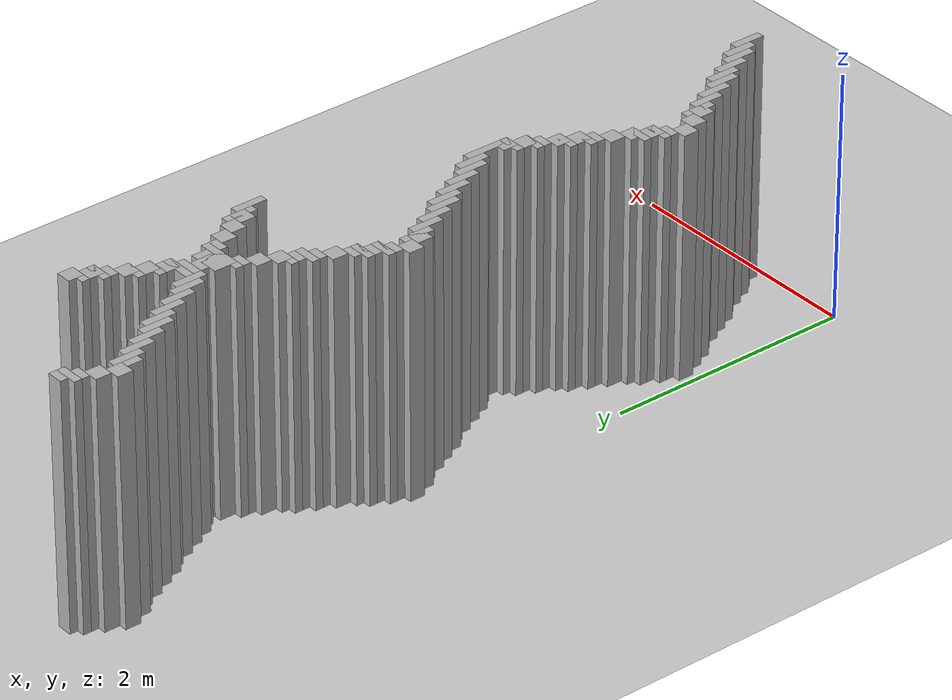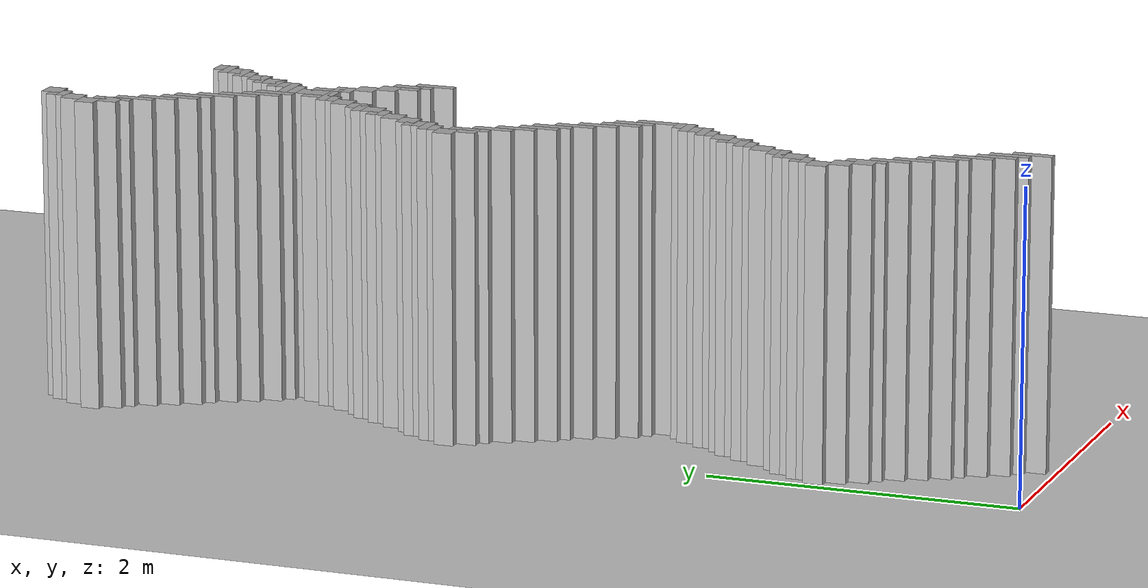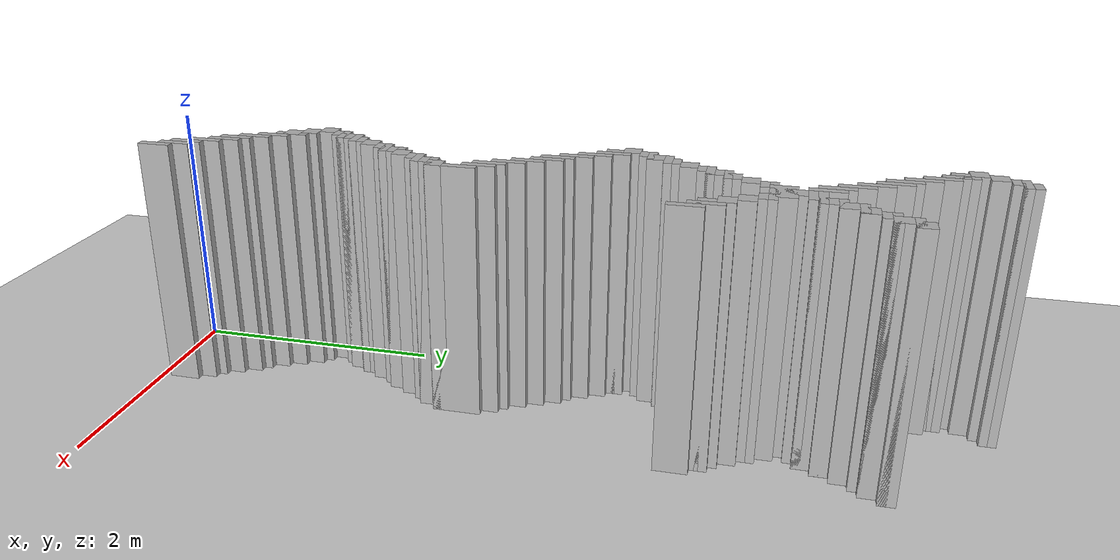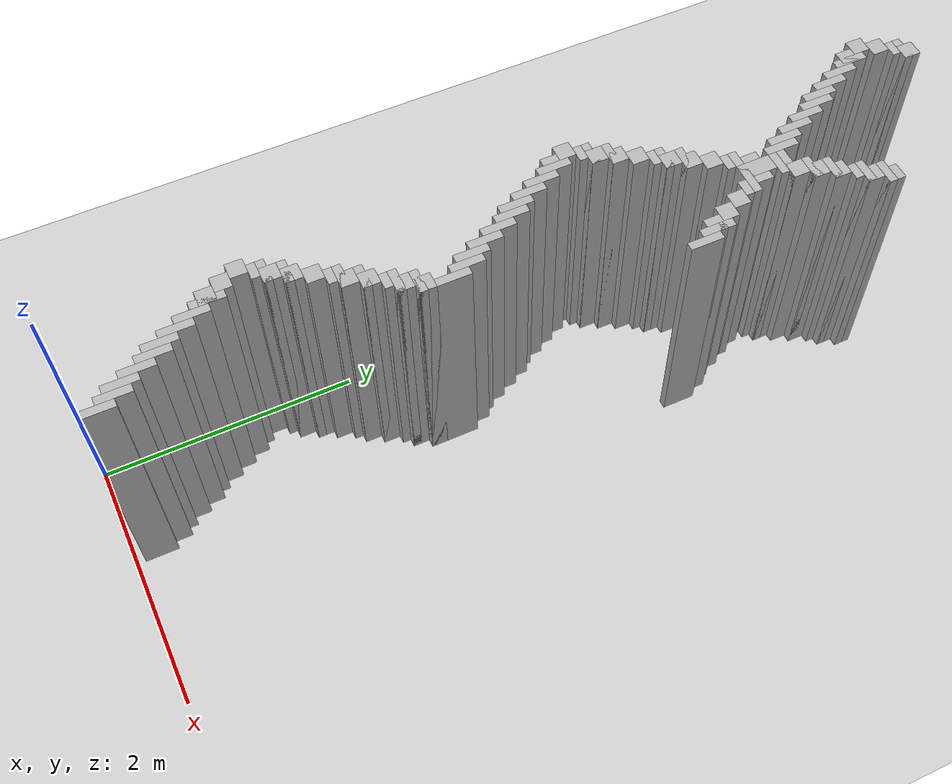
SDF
<sdf version="1.6">
 <world name="slam_world">
  <model name="ground_plane">
   <static>true</static>
   <link name="link">
    <collision name="collision">
     <geometry><plane><normal>0 0 1</normal><size>100 100</size></plane></geometry>
    </collision>
    <visual name="visual">
     <geometry><plane><normal>0 0 1</normal><size>100 100</size></plane></geometry>
     <material>
      <ambient>0.8 0.8 0.8 1</ambient>
      <diffuse>0.8 0.8 0.8 1</diffuse>
      <specular>0.8 0.8 0.8 1</specular>
     </material>
    </visual>
   </link>
  </model>
  <model name="wall_1664">
   <static>true</static>
   <pose>0.3191489361702127 6.51063829787234 1.0 0 0 0</pose>
   <link name="link">
    <collision name="collision">
     <geometry><box><size>0.1276595744680851 0.1276595744680851 2.0</size></box></geometry>
    </collision>
    <visual name="visual">
     <geometry><box><size>0.1276595744680851 0.1276595744680851 2.0</size></box></geometry>
     <material><ambient>0.5 0.5 0.5 1</ambient><diffuse>0.7 0.7 0.7 1</diffuse></material>
    </visual>
   </link>
  </model>
  <model name="wall_1671">
   <static>true</static>
   <pose>0.28723404255319146 6.478723404255319 1.0 0 0 0</pose>
   <link name="link">
    <collision name="collision">
     <geometry><box><size>0.19148936170212766 0.06382978723404255 2.0</size></box></geometry>
    </collision>
    <visual name="visual">
     <geometry><box><size>0.19148936170212766 0.06382978723404255 2.0</size></box></geometry>
     <material><ambient>0.5 0.5 0.5 1</ambient><diffuse>0.7 0.7 0.7 1</diffuse></material>
    </visual>
   </link>
  </model>
  <model name="wall_1680">
   <static>true</static>
   <pose>0.2553191489361702 6.414893617021276 1.0 0 0 0</pose>
   <link name="link">
    <collision name="collision">
     <geometry><box><size>0.1276595744680851 0.06382978723404255 2.0</size></box></geometry>
    </collision>
    <visual name="visual">
     <geometry><box><size>0.1276595744680851 0.06382978723404255 2.0</size></box></geometry>
     <material><ambient>0.5 0.5 0.5 1</ambient><diffuse>0.7 0.7 0.7 1</diffuse></material>
    </visual>
   </link>
  </model>
  <model name="wall_1687">
   <static>true</static>
   <pose>0.19148936170212766 6.319148936170213 1.0 0 0 0</pose>
   <link name="link">
    <collision name="collision">
     <geometry><box><size>0.1276595744680851 0.1276595744680851 2.0</size></box></geometry>
    </collision>
    <visual name="visual">
     <geometry><box><size>0.1276595744680851 0.1276595744680851 2.0</size></box></geometry>
     <material><ambient>0.5 0.5 0.5 1</ambient><diffuse>0.7 0.7 0.7 1</diffuse></material>
    </visual>
   </link>
  </model>
  <model name="wall_1694">
   <static>true</static>
   <pose>0.1276595744680851 6.191489361702128 1.0 0 0 0</pose>
   <link name="link">
    <collision name="collision">
     <geometry><box><size>0.1276595744680851 0.1276595744680851 2.0</size></box></geometry>
    </collision>
    <visual name="visual">
     <geometry><box><size>0.1276595744680851 0.1276595744680851 2.0</size></box></geometry>
     <material><ambient>0.5 0.5 0.5 1</ambient><diffuse>0.7 0.7 0.7 1</diffuse></material>
    </visual>
   </link>
  </model>
  <model name="wall_1703">
   <static>true</static>
   <pose>0.22340425531914893 6.063829787234042 1.0 0 0 0</pose>
   <link name="link">
    <collision name="collision">
     <geometry><box><size>0.06382978723404255 0.2553191489361702 2.0</size></box></geometry>
    </collision>
    <visual name="visual">
     <geometry><box><size>0.06382978723404255 0.2553191489361702 2.0</size></box></geometry>
     <material><ambient>0.5 0.5 0.5 1</ambient><diffuse>0.7 0.7 0.7 1</diffuse></material>
    </visual>
   </link>
  </model>
  <model name="wall_1710">
   <static>true</static>
   <pose>0.19148936170212766 6.063829787234042 1.0 0 0 0</pose>
   <link name="link">
    <collision name="collision">
     <geometry><box><size>0.1276595744680851 0.1276595744680851 2.0</size></box></geometry>
    </collision>
    <visual name="visual">
     <geometry><box><size>0.1276595744680851 0.1276595744680851 2.0</size></box></geometry>
     <material><ambient>0.5 0.5 0.5 1</ambient><diffuse>0.7 0.7 0.7 1</diffuse></material>
    </visual>
   </link>
  </model>
  <model name="wall_1717">
   <static>true</static>
   <pose>0.28723404255319146 5.936170212765957 1.0 0 0 0</pose>
   <link name="link">
    <collision name="collision">
     <geometry><box><size>0.06382978723404255 0.2553191489361702 2.0</size></box></geometry>
    </collision>
    <visual name="visual">
     <geometry><box><size>0.06382978723404255 0.2553191489361702 2.0</size></box></geometry>
     <material><ambient>0.5 0.5 0.5 1</ambient><diffuse>0.7 0.7 0.7 1</diffuse></material>
    </visual>
   </link>
  </model>
  <model name="wall_1731">
   <static>true</static>
   <pose>0.351063829787234 5.8085106382978715 1.0 0 0 0</pose>
   <link name="link">
    <collision name="collision">
     <geometry><box><size>0.06382978723404255 0.2553191489361702 2.0</size></box></geometry>
    </collision>
    <visual name="visual">
     <geometry><box><size>0.06382978723404255 0.2553191489361702 2.0</size></box></geometry>
     <material><ambient>0.5 0.5 0.5 1</ambient><diffuse>0.7 0.7 0.7 1</diffuse></material>
    </visual>
   </link>
  </model>
  <model name="wall_1741">
   <static>true</static>
   <pose>0.4148936170212766 5.680851063829786 1.0 0 0 0</pose>
   <link name="link">
    <collision name="collision">
     <geometry><box><size>0.06382978723404255 0.2553191489361702 2.0</size></box></geometry>
    </collision>
    <visual name="visual">
     <geometry><box><size>0.06382978723404255 0.2553191489361702 2.0</size></box></geometry>
     <material><ambient>0.5 0.5 0.5 1</ambient><diffuse>0.7 0.7 0.7 1</diffuse></material>
    </visual>
   </link>
  </model>
  <model name="wall_1742">
   <static>true</static>
   <pose>1.276595744680851 5.744680851063829 1.0 0 0 0</pose>
   <link name="link">
    <collision name="collision">
     <geometry><box><size>0.1276595744680851 0.1276595744680851 2.0</size></box></geometry>
    </collision>
    <visual name="visual">
     <geometry><box><size>0.1276595744680851 0.1276595744680851 2.0</size></box></geometry>
     <material><ambient>0.5 0.5 0.5 1</ambient><diffuse>0.7 0.7 0.7 1</diffuse></material>
    </visual>
   </link>
  </model>
  <model name="wall_1751">
   <static>true</static>
   <pose>0.4787234042553191 5.617021276595744 1.0 0 0 0</pose>
   <link name="link">
    <collision name="collision">
     <geometry><box><size>0.06382978723404255 0.2553191489361702 2.0</size></box></geometry>
    </collision>
    <visual name="visual">
     <geometry><box><size>0.06382978723404255 0.2553191489361702 2.0</size></box></geometry>
     <material><ambient>0.5 0.5 0.5 1</ambient><diffuse>0.7 0.7 0.7 1</diffuse></material>
    </visual>
   </link>
  </model>
  <model name="wall_1752">
   <static>true</static>
   <pose>1.2446808510638296 5.712765957446808 1.0 0 0 0</pose>
   <link name="link">
    <collision name="collision">
     <geometry><box><size>0.19148936170212766 0.06382978723404255 2.0</size></box></geometry>
    </collision>
    <visual name="visual">
     <geometry><box><size>0.19148936170212766 0.06382978723404255 2.0</size></box></geometry>
     <material><ambient>0.5 0.5 0.5 1</ambient><diffuse>0.7 0.7 0.7 1</diffuse></material>
    </visual>
   </link>
  </model>
  <model name="wall_1761">
   <static>true</static>
   <pose>1.2127659574468084 5.617021276595744 1.0 0 0 0</pose>
   <link name="link">
    <collision name="collision">
     <geometry><box><size>0.1276595744680851 0.1276595744680851 2.0</size></box></geometry>
    </collision>
    <visual name="visual">
     <geometry><box><size>0.1276595744680851 0.1276595744680851 2.0</size></box></geometry>
     <material><ambient>0.5 0.5 0.5 1</ambient><diffuse>0.7 0.7 0.7 1</diffuse></material>
    </visual>
   </link>
  </model>
  <model name="wall_1767">
   <static>true</static>
   <pose>0.5425531914893617 5.489361702127659 1.0 0 0 0</pose>
   <link name="link">
    <collision name="collision">
     <geometry><box><size>0.06382978723404255 0.2553191489361702 2.0</size></box></geometry>
    </collision>
    <visual name="visual">
     <geometry><box><size>0.06382978723404255 0.2553191489361702 2.0</size></box></geometry>
     <material><ambient>0.5 0.5 0.5 1</ambient><diffuse>0.7 0.7 0.7 1</diffuse></material>
    </visual>
   </link>
  </model>
  <model name="wall_1768">
   <static>true</static>
   <pose>1.180851063829787 5.585106382978723 1.0 0 0 0</pose>
   <link name="link">
    <collision name="collision">
     <geometry><box><size>0.19148936170212766 0.06382978723404255 2.0</size></box></geometry>
    </collision>
    <visual name="visual">
     <geometry><box><size>0.19148936170212766 0.06382978723404255 2.0</size></box></geometry>
     <material><ambient>0.5 0.5 0.5 1</ambient><diffuse>0.7 0.7 0.7 1</diffuse></material>
    </visual>
   </link>
  </model>
  <model name="wall_1777">
   <static>true</static>
   <pose>1.1489361702127658 5.5212765957446805 1.0 0 0 0</pose>
   <link name="link">
    <collision name="collision">
     <geometry><box><size>0.1276595744680851 0.06382978723404255 2.0</size></box></geometry>
    </collision>
    <visual name="visual">
     <geometry><box><size>0.1276595744680851 0.06382978723404255 2.0</size></box></geometry>
     <material><ambient>0.5 0.5 0.5 1</ambient><diffuse>0.7 0.7 0.7 1</diffuse></material>
    </visual>
   </link>
  </model>
  <model name="wall_1781">
   <static>true</static>
   <pose>0.6063829787234042 5.361702127659574 1.0 0 0 0</pose>
   <link name="link">
    <collision name="collision">
     <geometry><box><size>0.06382978723404255 0.2553191489361702 2.0</size></box></geometry>
    </collision>
    <visual name="visual">
     <geometry><box><size>0.06382978723404255 0.2553191489361702 2.0</size></box></geometry>
     <material><ambient>0.5 0.5 0.5 1</ambient><diffuse>0.7 0.7 0.7 1</diffuse></material>
    </visual>
   </link>
  </model>
  <model name="wall_1782">
   <static>true</static>
   <pose>1.0851063829787233 5.425531914893616 1.0 0 0 0</pose>
   <link name="link">
    <collision name="collision">
     <geometry><box><size>0.1276595744680851 0.1276595744680851 2.0</size></box></geometry>
    </collision>
    <visual name="visual">
     <geometry><box><size>0.1276595744680851 0.1276595744680851 2.0</size></box></geometry>
     <material><ambient>0.5 0.5 0.5 1</ambient><diffuse>0.7 0.7 0.7 1</diffuse></material>
    </visual>
   </link>
  </model>
  <model name="wall_1791">
   <static>true</static>
   <pose>1.053191489361702 5.3936170212765955 1.0 0 0 0</pose>
   <link name="link">
    <collision name="collision">
     <geometry><box><size>0.19148936170212766 0.06382978723404255 2.0</size></box></geometry>
    </collision>
    <visual name="visual">
     <geometry><box><size>0.19148936170212766 0.06382978723404255 2.0</size></box></geometry>
     <material><ambient>0.5 0.5 0.5 1</ambient><diffuse>0.7 0.7 0.7 1</diffuse></material>
    </visual>
   </link>
  </model>
  <model name="wall_1795">
   <static>true</static>
   <pose>0.6702127659574467 5.234042553191489 1.0 0 0 0</pose>
   <link name="link">
    <collision name="collision">
     <geometry><box><size>0.06382978723404255 0.2553191489361702 2.0</size></box></geometry>
    </collision>
    <visual name="visual">
     <geometry><box><size>0.06382978723404255 0.2553191489361702 2.0</size></box></geometry>
     <material><ambient>0.5 0.5 0.5 1</ambient><diffuse>0.7 0.7 0.7 1</diffuse></material>
    </visual>
   </link>
  </model>
  <model name="wall_1796">
   <static>true</static>
   <pose>1.0212765957446808 5.297872340425531 1.0 0 0 0</pose>
   <link name="link">
    <collision name="collision">
     <geometry><box><size>0.1276595744680851 0.1276595744680851 2.0</size></box></geometry>
    </collision>
    <visual name="visual">
     <geometry><box><size>0.1276595744680851 0.1276595744680851 2.0</size></box></geometry>
     <material><ambient>0.5 0.5 0.5 1</ambient><diffuse>0.7 0.7 0.7 1</diffuse></material>
    </visual>
   </link>
  </model>
  <model name="wall_1805">
   <static>true</static>
   <pose>0.7340425531914893 5.170212765957446 1.0 0 0 0</pose>
   <link name="link">
    <collision name="collision">
     <geometry><box><size>0.06382978723404255 0.2553191489361702 2.0</size></box></geometry>
    </collision>
    <visual name="visual">
     <geometry><box><size>0.06382978723404255 0.2553191489361702 2.0</size></box></geometry>
     <material><ambient>0.5 0.5 0.5 1</ambient><diffuse>0.7 0.7 0.7 1</diffuse></material>
    </visual>
   </link>
  </model>
  <model name="wall_1806">
   <static>true</static>
   <pose>0.9893617021276595 5.26595744680851 1.0 0 0 0</pose>
   <link name="link">
    <collision name="collision">
     <geometry><box><size>0.19148936170212766 0.06382978723404255 2.0</size></box></geometry>
    </collision>
    <visual name="visual">
     <geometry><box><size>0.19148936170212766 0.06382978723404255 2.0</size></box></geometry>
     <material><ambient>0.5 0.5 0.5 1</ambient><diffuse>0.7 0.7 0.7 1</diffuse></material>
    </visual>
   </link>
  </model>
  <model name="wall_1815">
   <static>true</static>
   <pose>0.9574468085106382 5.170212765957446 1.0 0 0 0</pose>
   <link name="link">
    <collision name="collision">
     <geometry><box><size>0.1276595744680851 0.1276595744680851 2.0</size></box></geometry>
    </collision>
    <visual name="visual">
     <geometry><box><size>0.1276595744680851 0.1276595744680851 2.0</size></box></geometry>
     <material><ambient>0.5 0.5 0.5 1</ambient><diffuse>0.7 0.7 0.7 1</diffuse></material>
    </visual>
   </link>
  </model>
  <model name="wall_1819">
   <static>true</static>
   <pose>0.8936170212765957 5.138297872340425 1.0 0 0 0</pose>
   <link name="link">
    <collision name="collision">
     <geometry><box><size>0.2553191489361702 0.06382978723404255 2.0</size></box></geometry>
    </collision>
    <visual name="visual">
     <geometry><box><size>0.2553191489361702 0.06382978723404255 2.0</size></box></geometry>
     <material><ambient>0.5 0.5 0.5 1</ambient><diffuse>0.7 0.7 0.7 1</diffuse></material>
    </visual>
   </link>
  </model>
  <model name="wall_1826">
   <static>true</static>
   <pose>0.8617021276595744 5.074468085106383 1.0 0 0 0</pose>
   <link name="link">
    <collision name="collision">
     <geometry><box><size>0.19148936170212766 0.06382978723404255 2.0</size></box></geometry>
    </collision>
    <visual name="visual">
     <geometry><box><size>0.19148936170212766 0.06382978723404255 2.0</size></box></geometry>
     <material><ambient>0.5 0.5 0.5 1</ambient><diffuse>0.7 0.7 0.7 1</diffuse></material>
    </visual>
   </link>
  </model>
  <model name="wall_1830">
   <static>true</static>
   <pose>0.8297872340425532 4.914893617021276 1.0 0 0 0</pose>
   <link name="link">
    <collision name="collision">
     <geometry><box><size>0.1276595744680851 0.2553191489361702 2.0</size></box></geometry>
    </collision>
    <visual name="visual">
     <geometry><box><size>0.1276595744680851 0.2553191489361702 2.0</size></box></geometry>
     <material><ambient>0.5 0.5 0.5 1</ambient><diffuse>0.7 0.7 0.7 1</diffuse></material>
    </visual>
   </link>
  </model>
  <model name="wall_1837">
   <static>true</static>
   <pose>0.8297872340425532 4.882978723404255 1.0 0 0 0</pose>
   <link name="link">
    <collision name="collision">
     <geometry><box><size>0.2553191489361702 0.19148936170212766 2.0</size></box></geometry>
    </collision>
    <visual name="visual">
     <geometry><box><size>0.2553191489361702 0.19148936170212766 2.0</size></box></geometry>
     <material><ambient>0.5 0.5 0.5 1</ambient><diffuse>0.7 0.7 0.7 1</diffuse></material>
    </visual>
   </link>
  </model>
  <model name="wall_1843">
   <static>true</static>
   <pose>0.8297872340425532 4.819148936170213 1.0 0 0 0</pose>
   <link name="link">
    <collision name="collision">
     <geometry><box><size>0.3829787234042553 0.06382978723404255 2.0</size></box></geometry>
    </collision>
    <visual name="visual">
     <geometry><box><size>0.3829787234042553 0.06382978723404255 2.0</size></box></geometry>
     <material><ambient>0.5 0.5 0.5 1</ambient><diffuse>0.7 0.7 0.7 1</diffuse></material>
    </visual>
   </link>
  </model>
  <model name="wall_1848">
   <static>true</static>
   <pose>0.702127659574468 4.75531914893617 1.0 0 0 0</pose>
   <link name="link">
    <collision name="collision">
     <geometry><box><size>0.1276595744680851 0.06382978723404255 2.0</size></box></geometry>
    </collision>
    <visual name="visual">
     <geometry><box><size>0.1276595744680851 0.06382978723404255 2.0</size></box></geometry>
     <material><ambient>0.5 0.5 0.5 1</ambient><diffuse>0.7 0.7 0.7 1</diffuse></material>
    </visual>
   </link>
  </model>
  <model name="wall_1849">
   <static>true</static>
   <pose>0.9574468085106382 4.75531914893617 1.0 0 0 0</pose>
   <link name="link">
    <collision name="collision">
     <geometry><box><size>0.1276595744680851 0.06382978723404255 2.0</size></box></geometry>
    </collision>
    <visual name="visual">
     <geometry><box><size>0.1276595744680851 0.06382978723404255 2.0</size></box></geometry>
     <material><ambient>0.5 0.5 0.5 1</ambient><diffuse>0.7 0.7 0.7 1</diffuse></material>
    </visual>
   </link>
  </model>
  <model name="wall_1854">
   <static>true</static>
   <pose>0.6382978723404255 4.659574468085106 1.0 0 0 0</pose>
   <link name="link">
    <collision name="collision">
     <geometry><box><size>0.1276595744680851 0.1276595744680851 2.0</size></box></geometry>
    </collision>
    <visual name="visual">
     <geometry><box><size>0.1276595744680851 0.1276595744680851 2.0</size></box></geometry>
     <material><ambient>0.5 0.5 0.5 1</ambient><diffuse>0.7 0.7 0.7 1</diffuse></material>
    </visual>
   </link>
  </model>
  <model name="wall_1855">
   <static>true</static>
   <pose>1.0212765957446808 4.659574468085106 1.0 0 0 0</pose>
   <link name="link">
    <collision name="collision">
     <geometry><box><size>0.1276595744680851 0.1276595744680851 2.0</size></box></geometry>
    </collision>
    <visual name="visual">
     <geometry><box><size>0.1276595744680851 0.1276595744680851 2.0</size></box></geometry>
     <material><ambient>0.5 0.5 0.5 1</ambient><diffuse>0.7 0.7 0.7 1</diffuse></material>
    </visual>
   </link>
  </model>
  <model name="wall_1860">
   <static>true</static>
   <pose>0.5744680851063829 4.531914893617021 1.0 0 0 0</pose>
   <link name="link">
    <collision name="collision">
     <geometry><box><size>0.1276595744680851 0.1276595744680851 2.0</size></box></geometry>
    </collision>
    <visual name="visual">
     <geometry><box><size>0.1276595744680851 0.1276595744680851 2.0</size></box></geometry>
     <material><ambient>0.5 0.5 0.5 1</ambient><diffuse>0.7 0.7 0.7 1</diffuse></material>
    </visual>
   </link>
  </model>
  <model name="wall_1861">
   <static>true</static>
   <pose>1.0851063829787233 4.531914893617021 1.0 0 0 0</pose>
   <link name="link">
    <collision name="collision">
     <geometry><box><size>0.1276595744680851 0.1276595744680851 2.0</size></box></geometry>
    </collision>
    <visual name="visual">
     <geometry><box><size>0.1276595744680851 0.1276595744680851 2.0</size></box></geometry>
     <material><ambient>0.5 0.5 0.5 1</ambient><diffuse>0.7 0.7 0.7 1</diffuse></material>
    </visual>
   </link>
  </model>
  <model name="wall_1866">
   <static>true</static>
   <pose>0.5425531914893617 4.5 1.0 0 0 0</pose>
   <link name="link">
    <collision name="collision">
     <geometry><box><size>0.19148936170212766 0.06382978723404255 2.0</size></box></geometry>
    </collision>
    <visual name="visual">
     <geometry><box><size>0.19148936170212766 0.06382978723404255 2.0</size></box></geometry>
     <material><ambient>0.5 0.5 0.5 1</ambient><diffuse>0.7 0.7 0.7 1</diffuse></material>
    </visual>
   </link>
  </model>
  <model name="wall_1867">
   <static>true</static>
   <pose>1.180851063829787 4.404255319148936 1.0 0 0 0</pose>
   <link name="link">
    <collision name="collision">
     <geometry><box><size>0.06382978723404255 0.2553191489361702 2.0</size></box></geometry>
    </collision>
    <visual name="visual">
     <geometry><box><size>0.06382978723404255 0.2553191489361702 2.0</size></box></geometry>
     <material><ambient>0.5 0.5 0.5 1</ambient><diffuse>0.7 0.7 0.7 1</diffuse></material>
    </visual>
   </link>
  </model>
  <model name="wall_1872">
   <static>true</static>
   <pose>0.5106382978723404 4.404255319148936 1.0 0 0 0</pose>
   <link name="link">
    <collision name="collision">
     <geometry><box><size>0.1276595744680851 0.1276595744680851 2.0</size></box></geometry>
    </collision>
    <visual name="visual">
     <geometry><box><size>0.1276595744680851 0.1276595744680851 2.0</size></box></geometry>
     <material><ambient>0.5 0.5 0.5 1</ambient><diffuse>0.7 0.7 0.7 1</diffuse></material>
    </visual>
   </link>
  </model>
  <model name="wall_1873">
   <static>true</static>
   <pose>1.1489361702127658 4.404255319148936 1.0 0 0 0</pose>
   <link name="link">
    <collision name="collision">
     <geometry><box><size>0.1276595744680851 0.1276595744680851 2.0</size></box></geometry>
    </collision>
    <visual name="visual">
     <geometry><box><size>0.1276595744680851 0.1276595744680851 2.0</size></box></geometry>
     <material><ambient>0.5 0.5 0.5 1</ambient><diffuse>0.7 0.7 0.7 1</diffuse></material>
    </visual>
   </link>
  </model>
  <model name="wall_1876">
   <static>true</static>
   <pose>0.4787234042553191 4.372340425531915 1.0 0 0 0</pose>
   <link name="link">
    <collision name="collision">
     <geometry><box><size>0.19148936170212766 0.06382978723404255 2.0</size></box></geometry>
    </collision>
    <visual name="visual">
     <geometry><box><size>0.19148936170212766 0.06382978723404255 2.0</size></box></geometry>
     <material><ambient>0.5 0.5 0.5 1</ambient><diffuse>0.7 0.7 0.7 1</diffuse></material>
    </visual>
   </link>
  </model>
  <model name="wall_1877">
   <static>true</static>
   <pose>1.2446808510638296 4.276595744680851 1.0 0 0 0</pose>
   <link name="link">
    <collision name="collision">
     <geometry><box><size>0.06382978723404255 0.2553191489361702 2.0</size></box></geometry>
    </collision>
    <visual name="visual">
     <geometry><box><size>0.06382978723404255 0.2553191489361702 2.0</size></box></geometry>
     <material><ambient>0.5 0.5 0.5 1</ambient><diffuse>0.7 0.7 0.7 1</diffuse></material>
    </visual>
   </link>
  </model>
  <model name="wall_1882">
   <static>true</static>
   <pose>0.44680851063829785 4.308510638297872 1.0 0 0 0</pose>
   <link name="link">
    <collision name="collision">
     <geometry><box><size>0.1276595744680851 0.06382978723404255 2.0</size></box></geometry>
    </collision>
    <visual name="visual">
     <geometry><box><size>0.1276595744680851 0.06382978723404255 2.0</size></box></geometry>
     <material><ambient>0.5 0.5 0.5 1</ambient><diffuse>0.7 0.7 0.7 1</diffuse></material>
    </visual>
   </link>
  </model>
  <model name="wall_1885">
   <static>true</static>
   <pose>0.3829787234042553 4.212765957446808 1.0 0 0 0</pose>
   <link name="link">
    <collision name="collision">
     <geometry><box><size>0.1276595744680851 0.1276595744680851 2.0</size></box></geometry>
    </collision>
    <visual name="visual">
     <geometry><box><size>0.1276595744680851 0.1276595744680851 2.0</size></box></geometry>
     <material><ambient>0.5 0.5 0.5 1</ambient><diffuse>0.7 0.7 0.7 1</diffuse></material>
    </visual>
   </link>
  </model>
  <model name="wall_1891">
   <static>true</static>
   <pose>0.3191489361702127 4.085106382978723 1.0 0 0 0</pose>
   <link name="link">
    <collision name="collision">
     <geometry><box><size>0.1276595744680851 0.1276595744680851 2.0</size></box></geometry>
    </collision>
    <visual name="visual">
     <geometry><box><size>0.1276595744680851 0.1276595744680851 2.0</size></box></geometry>
     <material><ambient>0.5 0.5 0.5 1</ambient><diffuse>0.7 0.7 0.7 1</diffuse></material>
    </visual>
   </link>
  </model>
  <model name="wall_1897">
   <static>true</static>
   <pose>0.28723404255319146 4.053191489361701 1.0 0 0 0</pose>
   <link name="link">
    <collision name="collision">
     <geometry><box><size>0.19148936170212766 0.06382978723404255 2.0</size></box></geometry>
    </collision>
    <visual name="visual">
     <geometry><box><size>0.19148936170212766 0.06382978723404255 2.0</size></box></geometry>
     <material><ambient>0.5 0.5 0.5 1</ambient><diffuse>0.7 0.7 0.7 1</diffuse></material>
    </visual>
   </link>
  </model>
  <model name="wall_1903">
   <static>true</static>
   <pose>0.2553191489361702 3.957446808510638 1.0 0 0 0</pose>
   <link name="link">
    <collision name="collision">
     <geometry><box><size>0.1276595744680851 0.1276595744680851 2.0</size></box></geometry>
    </collision>
    <visual name="visual">
     <geometry><box><size>0.1276595744680851 0.1276595744680851 2.0</size></box></geometry>
     <material><ambient>0.5 0.5 0.5 1</ambient><diffuse>0.7 0.7 0.7 1</diffuse></material>
    </visual>
   </link>
  </model>
  <model name="wall_1906">
   <static>true</static>
   <pose>0.22340425531914893 3.9255319148936167 1.0 0 0 0</pose>
   <link name="link">
    <collision name="collision">
     <geometry><box><size>0.19148936170212766 0.06382978723404255 2.0</size></box></geometry>
    </collision>
    <visual name="visual">
     <geometry><box><size>0.19148936170212766 0.06382978723404255 2.0</size></box></geometry>
     <material><ambient>0.5 0.5 0.5 1</ambient><diffuse>0.7 0.7 0.7 1</diffuse></material>
    </visual>
   </link>
  </model>
  <model name="wall_1912">
   <static>true</static>
   <pose>0.19148936170212766 3.861702127659574 1.0 0 0 0</pose>
   <link name="link">
    <collision name="collision">
     <geometry><box><size>0.1276595744680851 0.06382978723404255 2.0</size></box></geometry>
    </collision>
    <visual name="visual">
     <geometry><box><size>0.1276595744680851 0.06382978723404255 2.0</size></box></geometry>
     <material><ambient>0.5 0.5 0.5 1</ambient><diffuse>0.7 0.7 0.7 1</diffuse></material>
    </visual>
   </link>
  </model>
  <model name="wall_1915">
   <static>true</static>
   <pose>0.1276595744680851 3.7659574468085104 1.0 0 0 0</pose>
   <link name="link">
    <collision name="collision">
     <geometry><box><size>0.1276595744680851 0.1276595744680851 2.0</size></box></geometry>
    </collision>
    <visual name="visual">
     <geometry><box><size>0.1276595744680851 0.1276595744680851 2.0</size></box></geometry>
     <material><ambient>0.5 0.5 0.5 1</ambient><diffuse>0.7 0.7 0.7 1</diffuse></material>
    </visual>
   </link>
  </model>
  <model name="wall_1923">
   <static>true</static>
   <pose>0.22340425531914893 3.6382978723404253 1.0 0 0 0</pose>
   <link name="link">
    <collision name="collision">
     <geometry><box><size>0.06382978723404255 0.2553191489361702 2.0</size></box></geometry>
    </collision>
    <visual name="visual">
     <geometry><box><size>0.06382978723404255 0.2553191489361702 2.0</size></box></geometry>
     <material><ambient>0.5 0.5 0.5 1</ambient><diffuse>0.7 0.7 0.7 1</diffuse></material>
    </visual>
   </link>
  </model>
  <model name="wall_1930">
   <static>true</static>
   <pose>0.19148936170212766 3.6382978723404253 1.0 0 0 0</pose>
   <link name="link">
    <collision name="collision">
     <geometry><box><size>0.1276595744680851 0.1276595744680851 2.0</size></box></geometry>
    </collision>
    <visual name="visual">
     <geometry><box><size>0.1276595744680851 0.1276595744680851 2.0</size></box></geometry>
     <material><ambient>0.5 0.5 0.5 1</ambient><diffuse>0.7 0.7 0.7 1</diffuse></material>
    </visual>
   </link>
  </model>
  <model name="wall_1938">
   <static>true</static>
   <pose>0.28723404255319146 3.5106382978723403 1.0 0 0 0</pose>
   <link name="link">
    <collision name="collision">
     <geometry><box><size>0.06382978723404255 0.2553191489361702 2.0</size></box></geometry>
    </collision>
    <visual name="visual">
     <geometry><box><size>0.06382978723404255 0.2553191489361702 2.0</size></box></geometry>
     <material><ambient>0.5 0.5 0.5 1</ambient><diffuse>0.7 0.7 0.7 1</diffuse></material>
    </visual>
   </link>
  </model>
  <model name="wall_1950">
   <static>true</static>
   <pose>0.351063829787234 3.382978723404255 1.0 0 0 0</pose>
   <link name="link">
    <collision name="collision">
     <geometry><box><size>0.06382978723404255 0.2553191489361702 2.0</size></box></geometry>
    </collision>
    <visual name="visual">
     <geometry><box><size>0.06382978723404255 0.2553191489361702 2.0</size></box></geometry>
     <material><ambient>0.5 0.5 0.5 1</ambient><diffuse>0.7 0.7 0.7 1</diffuse></material>
    </visual>
   </link>
  </model>
  <model name="wall_1958">
   <static>true</static>
   <pose>0.4148936170212766 3.25531914893617 1.0 0 0 0</pose>
   <link name="link">
    <collision name="collision">
     <geometry><box><size>0.06382978723404255 0.2553191489361702 2.0</size></box></geometry>
    </collision>
    <visual name="visual">
     <geometry><box><size>0.06382978723404255 0.2553191489361702 2.0</size></box></geometry>
     <material><ambient>0.5 0.5 0.5 1</ambient><diffuse>0.7 0.7 0.7 1</diffuse></material>
    </visual>
   </link>
  </model>
  <model name="wall_1966">
   <static>true</static>
   <pose>0.4787234042553191 3.1914893617021276 1.0 0 0 0</pose>
   <link name="link">
    <collision name="collision">
     <geometry><box><size>0.06382978723404255 0.2553191489361702 2.0</size></box></geometry>
    </collision>
    <visual name="visual">
     <geometry><box><size>0.06382978723404255 0.2553191489361702 2.0</size></box></geometry>
     <material><ambient>0.5 0.5 0.5 1</ambient><diffuse>0.7 0.7 0.7 1</diffuse></material>
    </visual>
   </link>
  </model>
  <model name="wall_1977">
   <static>true</static>
   <pose>0.5425531914893617 3.0638297872340425 1.0 0 0 0</pose>
   <link name="link">
    <collision name="collision">
     <geometry><box><size>0.06382978723404255 0.2553191489361702 2.0</size></box></geometry>
    </collision>
    <visual name="visual">
     <geometry><box><size>0.06382978723404255 0.2553191489361702 2.0</size></box></geometry>
     <material><ambient>0.5 0.5 0.5 1</ambient><diffuse>0.7 0.7 0.7 1</diffuse></material>
    </visual>
   </link>
  </model>
  <model name="wall_1988">
   <static>true</static>
   <pose>0.6063829787234042 2.936170212765957 1.0 0 0 0</pose>
   <link name="link">
    <collision name="collision">
     <geometry><box><size>0.06382978723404255 0.2553191489361702 2.0</size></box></geometry>
    </collision>
    <visual name="visual">
     <geometry><box><size>0.06382978723404255 0.2553191489361702 2.0</size></box></geometry>
     <material><ambient>0.5 0.5 0.5 1</ambient><diffuse>0.7 0.7 0.7 1</diffuse></material>
    </visual>
   </link>
  </model>
  <model name="wall_1996">
   <static>true</static>
   <pose>0.6702127659574467 2.808510638297872 1.0 0 0 0</pose>
   <link name="link">
    <collision name="collision">
     <geometry><box><size>0.06382978723404255 0.2553191489361702 2.0</size></box></geometry>
    </collision>
    <visual name="visual">
     <geometry><box><size>0.06382978723404255 0.2553191489361702 2.0</size></box></geometry>
     <material><ambient>0.5 0.5 0.5 1</ambient><diffuse>0.7 0.7 0.7 1</diffuse></material>
    </visual>
   </link>
  </model>
  <model name="wall_2004">
   <static>true</static>
   <pose>0.7340425531914893 2.7446808510638294 1.0 0 0 0</pose>
   <link name="link">
    <collision name="collision">
     <geometry><box><size>0.06382978723404255 0.2553191489361702 2.0</size></box></geometry>
    </collision>
    <visual name="visual">
     <geometry><box><size>0.06382978723404255 0.2553191489361702 2.0</size></box></geometry>
     <material><ambient>0.5 0.5 0.5 1</ambient><diffuse>0.7 0.7 0.7 1</diffuse></material>
    </visual>
   </link>
  </model>
  <model name="wall_2015">
   <static>true</static>
   <pose>0.7978723404255319 2.553191489361702 1.0 0 0 0</pose>
   <link name="link">
    <collision name="collision">
     <geometry><box><size>0.06382978723404255 0.3829787234042553 2.0</size></box></geometry>
    </collision>
    <visual name="visual">
     <geometry><box><size>0.06382978723404255 0.3829787234042553 2.0</size></box></geometry>
     <material><ambient>0.5 0.5 0.5 1</ambient><diffuse>0.7 0.7 0.7 1</diffuse></material>
    </visual>
   </link>
  </model>
  <model name="wall_2033">
   <static>true</static>
   <pose>0.7659574468085106 2.4255319148936167 1.0 0 0 0</pose>
   <link name="link">
    <collision name="collision">
     <geometry><box><size>0.1276595744680851 0.1276595744680851 2.0</size></box></geometry>
    </collision>
    <visual name="visual">
     <geometry><box><size>0.1276595744680851 0.1276595744680851 2.0</size></box></geometry>
     <material><ambient>0.5 0.5 0.5 1</ambient><diffuse>0.7 0.7 0.7 1</diffuse></material>
    </visual>
   </link>
  </model>
  <model name="wall_2039">
   <static>true</static>
   <pose>0.7340425531914893 2.3936170212765955 1.0 0 0 0</pose>
   <link name="link">
    <collision name="collision">
     <geometry><box><size>0.19148936170212766 0.06382978723404255 2.0</size></box></geometry>
    </collision>
    <visual name="visual">
     <geometry><box><size>0.19148936170212766 0.06382978723404255 2.0</size></box></geometry>
     <material><ambient>0.5 0.5 0.5 1</ambient><diffuse>0.7 0.7 0.7 1</diffuse></material>
    </visual>
   </link>
  </model>
  <model name="wall_2046">
   <static>true</static>
   <pose>0.702127659574468 2.2978723404255317 1.0 0 0 0</pose>
   <link name="link">
    <collision name="collision">
     <geometry><box><size>0.1276595744680851 0.1276595744680851 2.0</size></box></geometry>
    </collision>
    <visual name="visual">
     <geometry><box><size>0.1276595744680851 0.1276595744680851 2.0</size></box></geometry>
     <material><ambient>0.5 0.5 0.5 1</ambient><diffuse>0.7 0.7 0.7 1</diffuse></material>
    </visual>
   </link>
  </model>
  <model name="wall_2054">
   <static>true</static>
   <pose>0.6702127659574467 2.2659574468085104 1.0 0 0 0</pose>
   <link name="link">
    <collision name="collision">
     <geometry><box><size>0.19148936170212766 0.06382978723404255 2.0</size></box></geometry>
    </collision>
    <visual name="visual">
     <geometry><box><size>0.19148936170212766 0.06382978723404255 2.0</size></box></geometry>
     <material><ambient>0.5 0.5 0.5 1</ambient><diffuse>0.7 0.7 0.7 1</diffuse></material>
    </visual>
   </link>
  </model>
  <model name="wall_2062">
   <static>true</static>
   <pose>0.6382978723404255 2.202127659574468 1.0 0 0 0</pose>
   <link name="link">
    <collision name="collision">
     <geometry><box><size>0.1276595744680851 0.06382978723404255 2.0</size></box></geometry>
    </collision>
    <visual name="visual">
     <geometry><box><size>0.1276595744680851 0.06382978723404255 2.0</size></box></geometry>
     <material><ambient>0.5 0.5 0.5 1</ambient><diffuse>0.7 0.7 0.7 1</diffuse></material>
    </visual>
   </link>
  </model>
  <model name="wall_2066">
   <static>true</static>
   <pose>0.5744680851063829 2.106382978723404 1.0 0 0 0</pose>
   <link name="link">
    <collision name="collision">
     <geometry><box><size>0.1276595744680851 0.1276595744680851 2.0</size></box></geometry>
    </collision>
    <visual name="visual">
     <geometry><box><size>0.1276595744680851 0.1276595744680851 2.0</size></box></geometry>
     <material><ambient>0.5 0.5 0.5 1</ambient><diffuse>0.7 0.7 0.7 1</diffuse></material>
    </visual>
   </link>
  </model>
  <model name="wall_2074">
   <static>true</static>
   <pose>0.5425531914893617 2.074468085106383 1.0 0 0 0</pose>
   <link name="link">
    <collision name="collision">
     <geometry><box><size>0.19148936170212766 0.06382978723404255 2.0</size></box></geometry>
    </collision>
    <visual name="visual">
     <geometry><box><size>0.19148936170212766 0.06382978723404255 2.0</size></box></geometry>
     <material><ambient>0.5 0.5 0.5 1</ambient><diffuse>0.7 0.7 0.7 1</diffuse></material>
    </visual>
   </link>
  </model>
  <model name="wall_2082">
   <static>true</static>
   <pose>0.5106382978723404 1.978723404255319 1.0 0 0 0</pose>
   <link name="link">
    <collision name="collision">
     <geometry><box><size>0.1276595744680851 0.1276595744680851 2.0</size></box></geometry>
    </collision>
    <visual name="visual">
     <geometry><box><size>0.1276595744680851 0.1276595744680851 2.0</size></box></geometry>
     <material><ambient>0.5 0.5 0.5 1</ambient><diffuse>0.7 0.7 0.7 1</diffuse></material>
    </visual>
   </link>
  </model>
  <model name="wall_2085">
   <static>true</static>
   <pose>0.4787234042553191 1.9468085106382977 1.0 0 0 0</pose>
   <link name="link">
    <collision name="collision">
     <geometry><box><size>0.19148936170212766 0.06382978723404255 2.0</size></box></geometry>
    </collision>
    <visual name="visual">
     <geometry><box><size>0.19148936170212766 0.06382978723404255 2.0</size></box></geometry>
     <material><ambient>0.5 0.5 0.5 1</ambient><diffuse>0.7 0.7 0.7 1</diffuse></material>
    </visual>
   </link>
  </model>
  <model name="wall_2093">
   <static>true</static>
   <pose>0.44680851063829785 1.8829787234042552 1.0 0 0 0</pose>
   <link name="link">
    <collision name="collision">
     <geometry><box><size>0.1276595744680851 0.06382978723404255 2.0</size></box></geometry>
    </collision>
    <visual name="visual">
     <geometry><box><size>0.1276595744680851 0.06382978723404255 2.0</size></box></geometry>
     <material><ambient>0.5 0.5 0.5 1</ambient><diffuse>0.7 0.7 0.7 1</diffuse></material>
    </visual>
   </link>
  </model>
  <model name="wall_2096">
   <static>true</static>
   <pose>0.3829787234042553 1.7872340425531914 1.0 0 0 0</pose>
   <link name="link">
    <collision name="collision">
     <geometry><box><size>0.1276595744680851 0.1276595744680851 2.0</size></box></geometry>
    </collision>
    <visual name="visual">
     <geometry><box><size>0.1276595744680851 0.1276595744680851 2.0</size></box></geometry>
     <material><ambient>0.5 0.5 0.5 1</ambient><diffuse>0.7 0.7 0.7 1</diffuse></material>
    </visual>
   </link>
  </model>
  <model name="wall_2104">
   <static>true</static>
   <pose>0.3191489361702127 1.6595744680851063 1.0 0 0 0</pose>
   <link name="link">
    <collision name="collision">
     <geometry><box><size>0.1276595744680851 0.1276595744680851 2.0</size></box></geometry>
    </collision>
    <visual name="visual">
     <geometry><box><size>0.1276595744680851 0.1276595744680851 2.0</size></box></geometry>
     <material><ambient>0.5 0.5 0.5 1</ambient><diffuse>0.7 0.7 0.7 1</diffuse></material>
    </visual>
   </link>
  </model>
  <model name="wall_2112">
   <static>true</static>
   <pose>0.28723404255319146 1.627659574468085 1.0 0 0 0</pose>
   <link name="link">
    <collision name="collision">
     <geometry><box><size>0.19148936170212766 0.06382978723404255 2.0</size></box></geometry>
    </collision>
    <visual name="visual">
     <geometry><box><size>0.19148936170212766 0.06382978723404255 2.0</size></box></geometry>
     <material><ambient>0.5 0.5 0.5 1</ambient><diffuse>0.7 0.7 0.7 1</diffuse></material>
    </visual>
   </link>
  </model>
  <model name="wall_2120">
   <static>true</static>
   <pose>0.2553191489361702 1.5319148936170213 1.0 0 0 0</pose>
   <link name="link">
    <collision name="collision">
     <geometry><box><size>0.1276595744680851 0.1276595744680851 2.0</size></box></geometry>
    </collision>
    <visual name="visual">
     <geometry><box><size>0.1276595744680851 0.1276595744680851 2.0</size></box></geometry>
     <material><ambient>0.5 0.5 0.5 1</ambient><diffuse>0.7 0.7 0.7 1</diffuse></material>
    </visual>
   </link>
  </model>
  <model name="wall_2123">
   <static>true</static>
   <pose>0.22340425531914893 1.4999999999999998 1.0 0 0 0</pose>
   <link name="link">
    <collision name="collision">
     <geometry><box><size>0.19148936170212766 0.06382978723404255 2.0</size></box></geometry>
    </collision>
    <visual name="visual">
     <geometry><box><size>0.19148936170212766 0.06382978723404255 2.0</size></box></geometry>
     <material><ambient>0.5 0.5 0.5 1</ambient><diffuse>0.7 0.7 0.7 1</diffuse></material>
    </visual>
   </link>
  </model>
  <model name="wall_2130">
   <static>true</static>
   <pose>0.19148936170212766 1.4361702127659572 1.0 0 0 0</pose>
   <link name="link">
    <collision name="collision">
     <geometry><box><size>0.1276595744680851 0.06382978723404255 2.0</size></box></geometry>
    </collision>
    <visual name="visual">
     <geometry><box><size>0.1276595744680851 0.06382978723404255 2.0</size></box></geometry>
     <material><ambient>0.5 0.5 0.5 1</ambient><diffuse>0.7 0.7 0.7 1</diffuse></material>
    </visual>
   </link>
  </model>
  <model name="wall_2133">
   <static>true</static>
   <pose>0.1276595744680851 1.3404255319148934 1.0 0 0 0</pose>
   <link name="link">
    <collision name="collision">
     <geometry><box><size>0.1276595744680851 0.1276595744680851 2.0</size></box></geometry>
    </collision>
    <visual name="visual">
     <geometry><box><size>0.1276595744680851 0.1276595744680851 2.0</size></box></geometry>
     <material><ambient>0.5 0.5 0.5 1</ambient><diffuse>0.7 0.7 0.7 1</diffuse></material>
    </visual>
   </link>
  </model>
  <model name="wall_2141">
   <static>true</static>
   <pose>0.19148936170212766 1.2127659574468084 1.0 0 0 0</pose>
   <link name="link">
    <collision name="collision">
     <geometry><box><size>0.1276595744680851 0.1276595744680851 2.0</size></box></geometry>
    </collision>
    <visual name="visual">
     <geometry><box><size>0.1276595744680851 0.1276595744680851 2.0</size></box></geometry>
     <material><ambient>0.5 0.5 0.5 1</ambient><diffuse>0.7 0.7 0.7 1</diffuse></material>
    </visual>
   </link>
  </model>
  <model name="wall_2147">
   <static>true</static>
   <pose>0.28723404255319146 1.0851063829787233 1.0 0 0 0</pose>
   <link name="link">
    <collision name="collision">
     <geometry><box><size>0.06382978723404255 0.2553191489361702 2.0</size></box></geometry>
    </collision>
    <visual name="visual">
     <geometry><box><size>0.06382978723404255 0.2553191489361702 2.0</size></box></geometry>
     <material><ambient>0.5 0.5 0.5 1</ambient><diffuse>0.7 0.7 0.7 1</diffuse></material>
    </visual>
   </link>
  </model>
  <model name="wall_2153">
   <static>true</static>
   <pose>0.2553191489361702 1.0851063829787233 1.0 0 0 0</pose>
   <link name="link">
    <collision name="collision">
     <geometry><box><size>0.1276595744680851 0.1276595744680851 2.0</size></box></geometry>
    </collision>
    <visual name="visual">
     <geometry><box><size>0.1276595744680851 0.1276595744680851 2.0</size></box></geometry>
     <material><ambient>0.5 0.5 0.5 1</ambient><diffuse>0.7 0.7 0.7 1</diffuse></material>
    </visual>
   </link>
  </model>
  <model name="wall_2159">
   <static>true</static>
   <pose>0.351063829787234 0.9574468085106382 1.0 0 0 0</pose>
   <link name="link">
    <collision name="collision">
     <geometry><box><size>0.06382978723404255 0.2553191489361702 2.0</size></box></geometry>
    </collision>
    <visual name="visual">
     <geometry><box><size>0.06382978723404255 0.2553191489361702 2.0</size></box></geometry>
     <material><ambient>0.5 0.5 0.5 1</ambient><diffuse>0.7 0.7 0.7 1</diffuse></material>
    </visual>
   </link>
  </model>
  <model name="wall_2168">
   <static>true</static>
   <pose>0.4148936170212766 0.8297872340425532 1.0 0 0 0</pose>
   <link name="link">
    <collision name="collision">
     <geometry><box><size>0.06382978723404255 0.2553191489361702 2.0</size></box></geometry>
    </collision>
    <visual name="visual">
     <geometry><box><size>0.06382978723404255 0.2553191489361702 2.0</size></box></geometry>
     <material><ambient>0.5 0.5 0.5 1</ambient><diffuse>0.7 0.7 0.7 1</diffuse></material>
    </visual>
   </link>
  </model>
  <model name="wall_2174">
   <static>true</static>
   <pose>0.4787234042553191 0.702127659574468 1.0 0 0 0</pose>
   <link name="link">
    <collision name="collision">
     <geometry><box><size>0.06382978723404255 0.2553191489361702 2.0</size></box></geometry>
    </collision>
    <visual name="visual">
     <geometry><box><size>0.06382978723404255 0.2553191489361702 2.0</size></box></geometry>
     <material><ambient>0.5 0.5 0.5 1</ambient><diffuse>0.7 0.7 0.7 1</diffuse></material>
    </visual>
   </link>
  </model>
  <model name="wall_2180">
   <static>true</static>
   <pose>0.5425531914893617 0.6382978723404255 1.0 0 0 0</pose>
   <link name="link">
    <collision name="collision">
     <geometry><box><size>0.06382978723404255 0.2553191489361702 2.0</size></box></geometry>
    </collision>
    <visual name="visual">
     <geometry><box><size>0.06382978723404255 0.2553191489361702 2.0</size></box></geometry>
     <material><ambient>0.5 0.5 0.5 1</ambient><diffuse>0.7 0.7 0.7 1</diffuse></material>
    </visual>
   </link>
  </model>
  <model name="wall_2189">
   <static>true</static>
   <pose>0.6063829787234042 0.5106382978723404 1.0 0 0 0</pose>
   <link name="link">
    <collision name="collision">
     <geometry><box><size>0.06382978723404255 0.2553191489361702 2.0</size></box></geometry>
    </collision>
    <visual name="visual">
     <geometry><box><size>0.06382978723404255 0.2553191489361702 2.0</size></box></geometry>
     <material><ambient>0.5 0.5 0.5 1</ambient><diffuse>0.7 0.7 0.7 1</diffuse></material>
    </visual>
   </link>
  </model>
  <model name="wall_2198">
   <static>true</static>
   <pose>0.6702127659574467 0.3829787234042553 1.0 0 0 0</pose>
   <link name="link">
    <collision name="collision">
     <geometry><box><size>0.06382978723404255 0.2553191489361702 2.0</size></box></geometry>
    </collision>
    <visual name="visual">
     <geometry><box><size>0.06382978723404255 0.2553191489361702 2.0</size></box></geometry>
     <material><ambient>0.5 0.5 0.5 1</ambient><diffuse>0.7 0.7 0.7 1</diffuse></material>
    </visual>
   </link>
  </model>
  <model name="wall_2204">
   <static>true</static>
   <pose>0.7340425531914893 0.3191489361702127 1.0 0 0 0</pose>
   <link name="link">
    <collision name="collision">
     <geometry><box><size>0.06382978723404255 0.2553191489361702 2.0</size></box></geometry>
    </collision>
    <visual name="visual">
     <geometry><box><size>0.06382978723404255 0.2553191489361702 2.0</size></box></geometry>
     <material><ambient>0.5 0.5 0.5 1</ambient><diffuse>0.7 0.7 0.7 1</diffuse></material>
    </visual>
   </link>
  </model>
  <model name="wall_2213">
   <static>true</static>
   <pose>0.7978723404255319 0.19148936170212766 1.0 0 0 0</pose>
   <link name="link">
    <collision name="collision">
     <geometry><box><size>0.06382978723404255 0.2553191489361702 2.0</size></box></geometry>
    </collision>
    <visual name="visual">
     <geometry><box><size>0.06382978723404255 0.2553191489361702 2.0</size></box></geometry>
     <material><ambient>0.5 0.5 0.5 1</ambient><diffuse>0.7 0.7 0.7 1</diffuse></material>
    </visual>
   </link>
  </model>
 </world>
</sdf>
